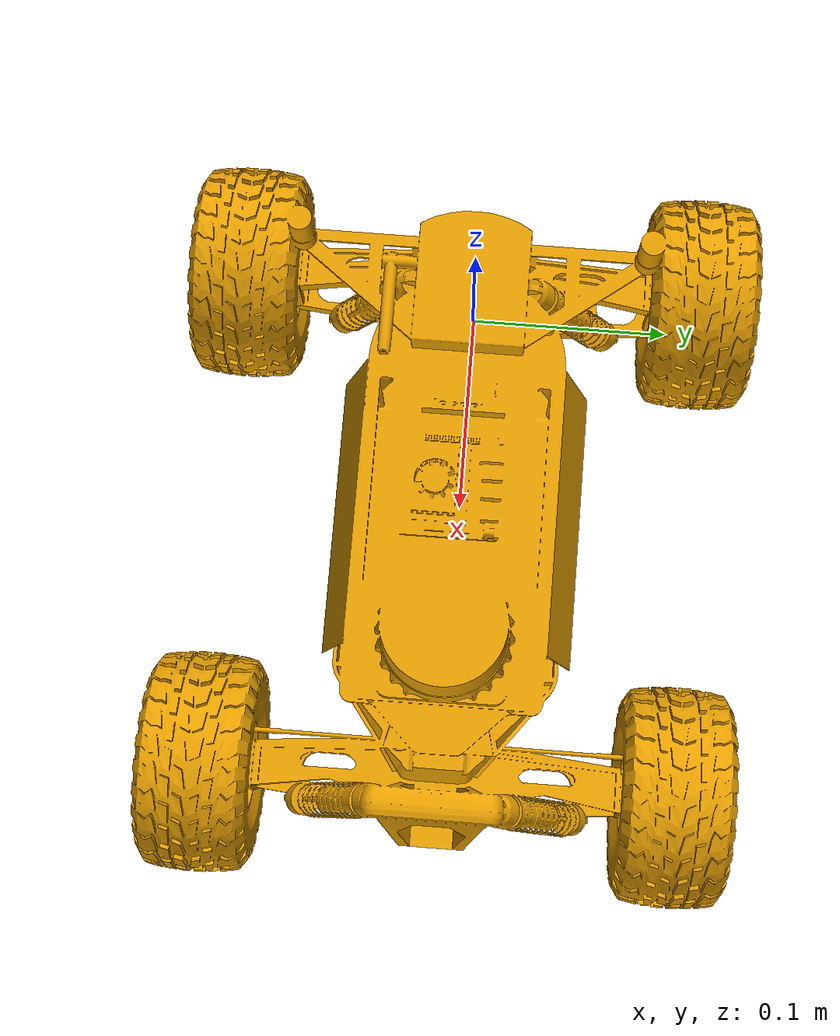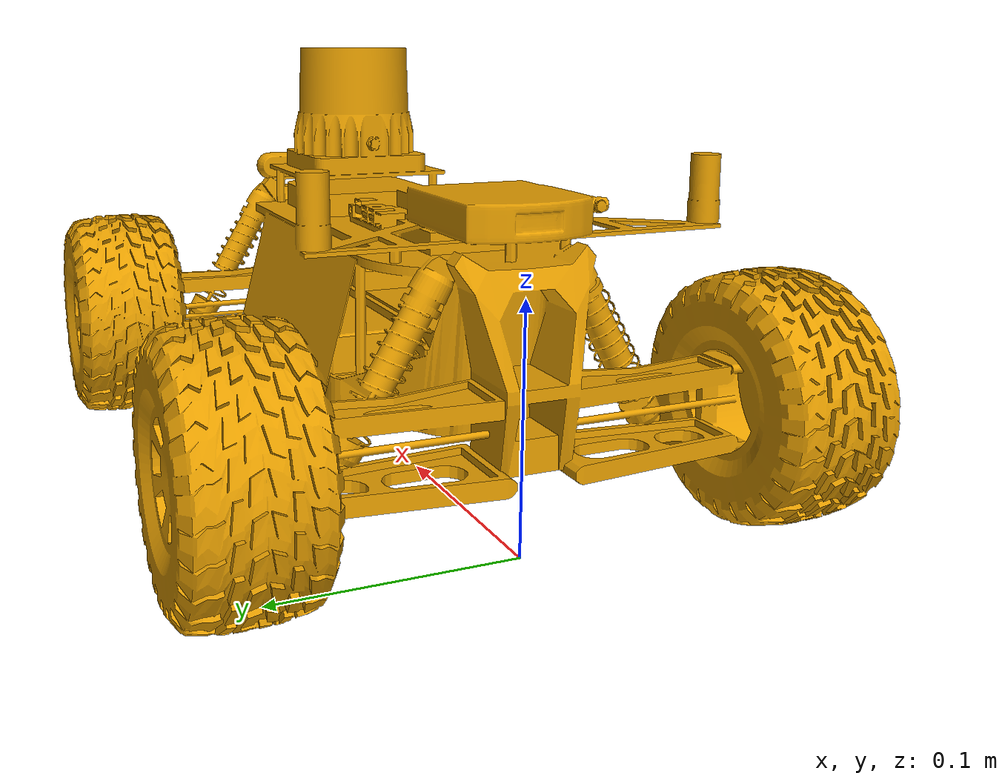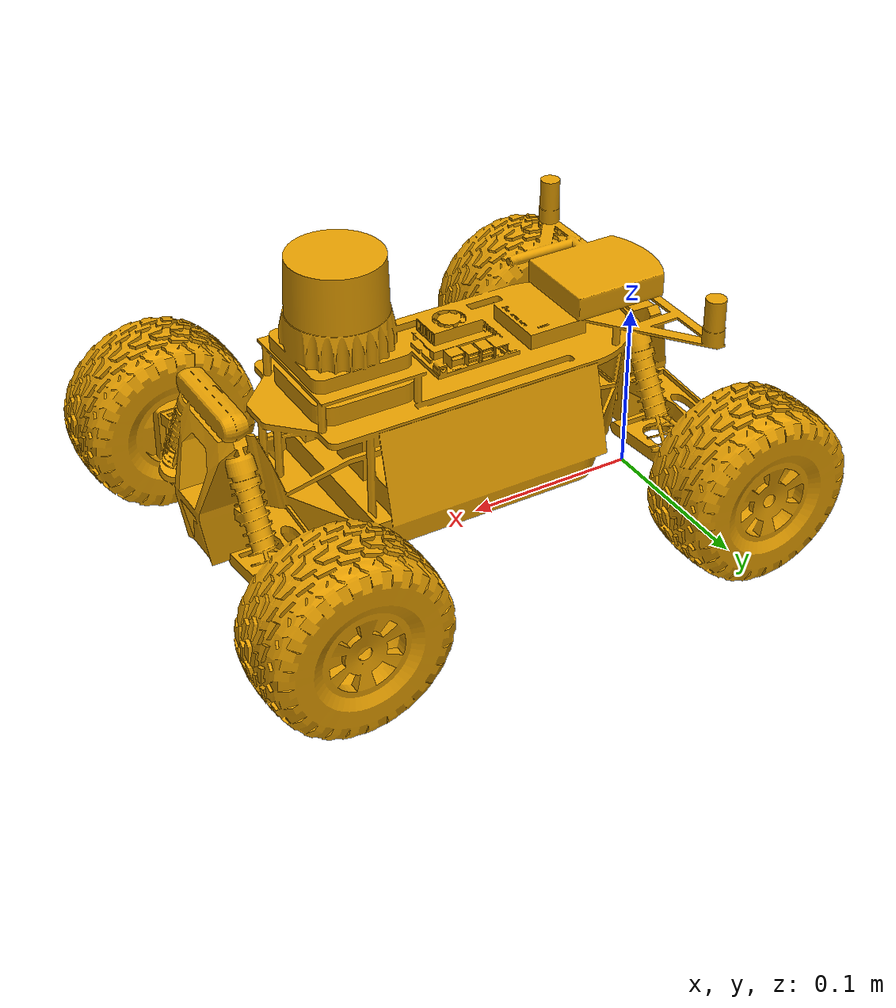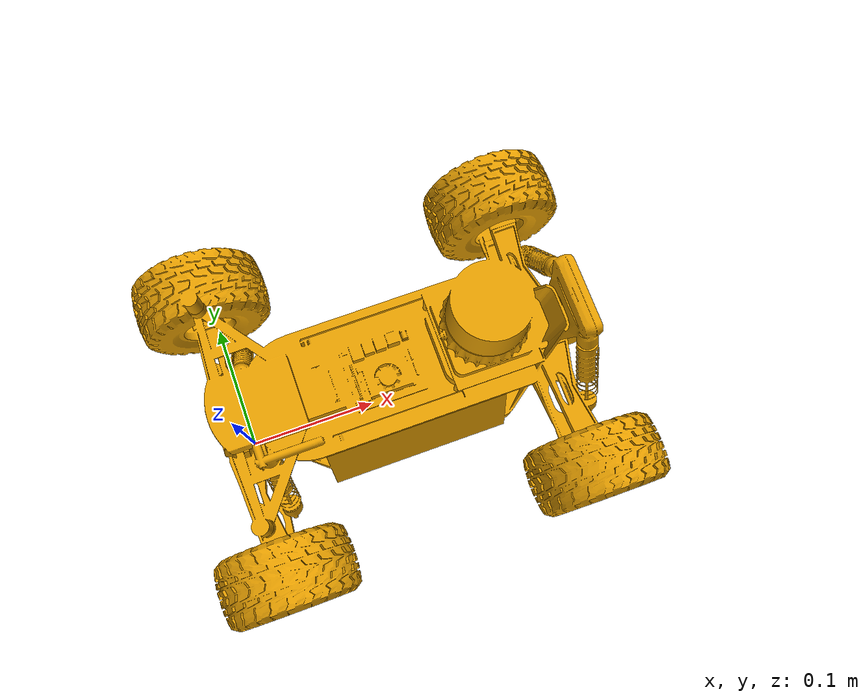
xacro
<?xml version="1.0"?>
<robot xmlns:xacro="http://ros.org/wiki/xacro">
  <!-- load parameter -->
  <xacro:property name="vehicle_info" value="${xacro.load_yaml('$(find roboracer_offroad_description)/config/vehicle_info.param.yaml')}"/>

  <!-- vehicle body -->
  <link name="base_link">
    <visual>
      <origin xyz="0 0 0" rpy="0 0 0"/>
      <geometry>
        <mesh filename="package://roboracer_offroad_description/mesh/roboracer_max.stl" scale=".5 .5 .5"/>
      </geometry>
    </visual>
  </link>
</robot>
